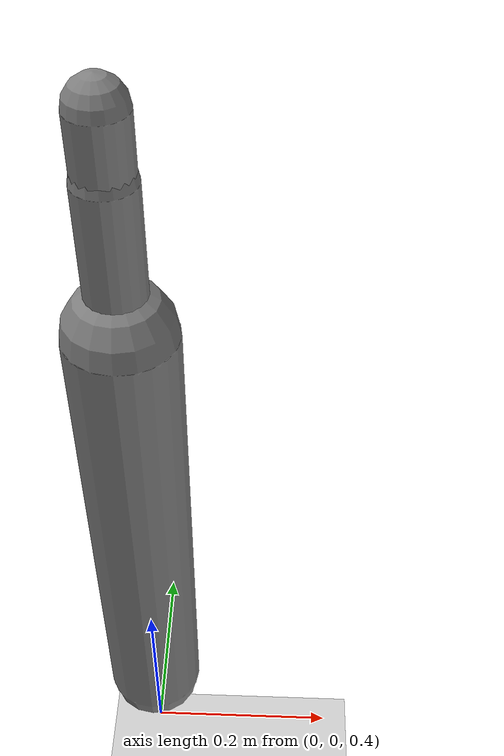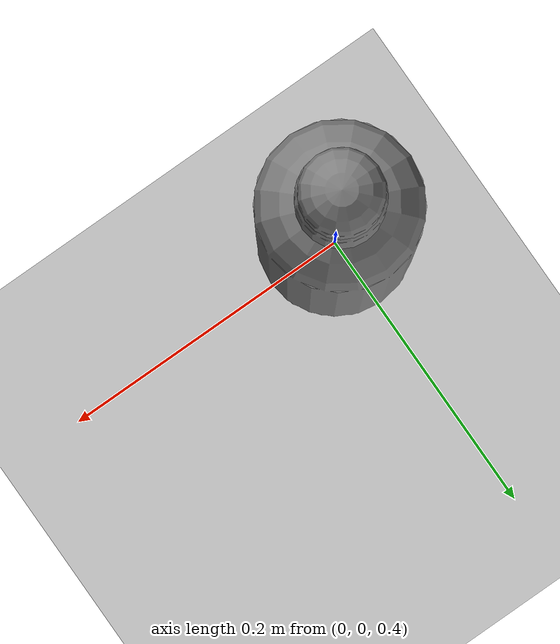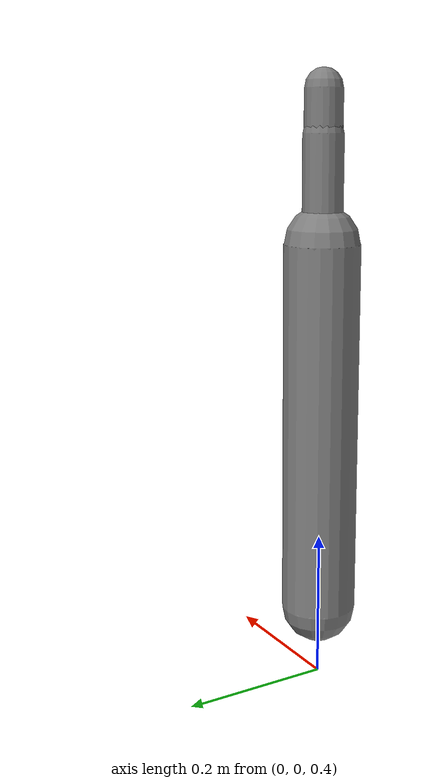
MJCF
<?xml version='1.0' encoding='UTF-8'?>
<mujoco model="RobotModel">
  <option gravity="0 0 -9.81" timestep="0.002" solver="CG" iterations="500" integrator="Euler"/>
  <worldbody>
    <geom name="Floor" type="plane" size="10 10 0.1" pos="0 0 0" rgba="0.8 0.8 0.8 1"/>
    <body name="Limb0" pos="0 0 0.5">
      <geom type="capsule" fromto="0 0 0 0 0 0.5" size="0.05" density="1000" contype="1" conaffinity="1"/>
      <body name="Limb0_3d6a910d" pos="0 0 0.5">
        <geom type="capsule" fromto="0 0 0 0 0 0.13921696036725983" size="0.026478959300457683" density="500.0" contype="1" conaffinity="1"/>
        <joint name="Joint_Limb0_Limb0_3d6a910d_0" type="hinge" axis="0 1 0" range="-60 60"/>
      </body>
      <body name="Limb1_3d6a910d" pos="0 0 0.5">
        <geom type="capsule" fromto="0 0 0 0 0 0.19424876132526697" size="0.02484766616249177" density="500.0" contype="1" conaffinity="1"/>
        <joint name="Joint_Limb0_Limb1_3d6a910d_0" type="hinge" axis="1 0 0" range="-60 60"/>
      </body>
    </body>
  </worldbody>
  <actuator>
    <position name="position_Actuator_Joint_Limb0_Limb0_3d6a910d_0" joint="Joint_Limb0_Limb0_3d6a910d_0" gear="1.0"/>
    <position name="position_Actuator_Joint_Limb0_Limb1_3d6a910d_0" joint="Joint_Limb0_Limb1_3d6a910d_0" gear="1.0"/>
  </actuator>
</mujoco>
